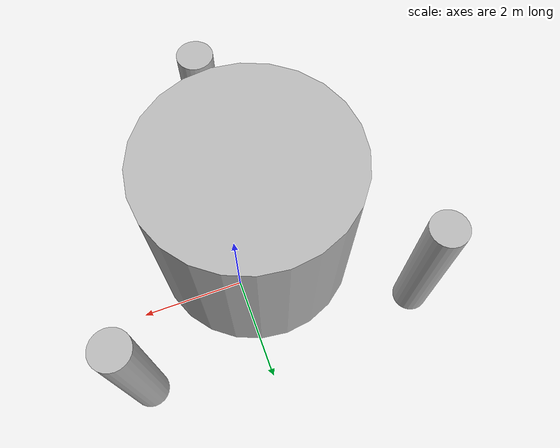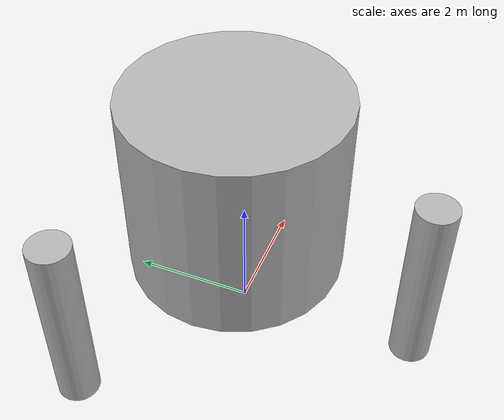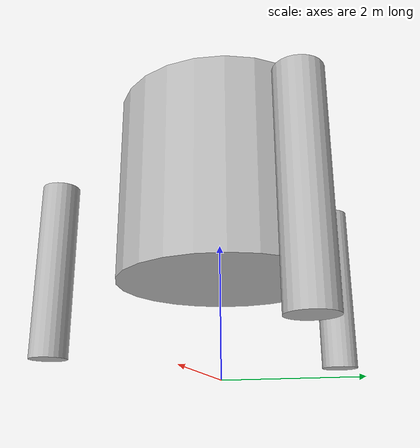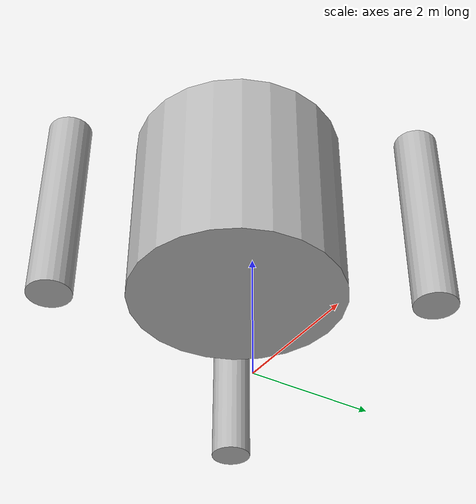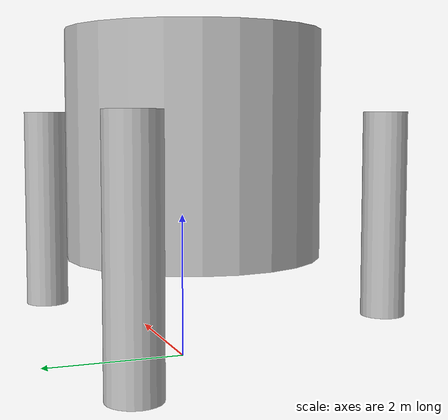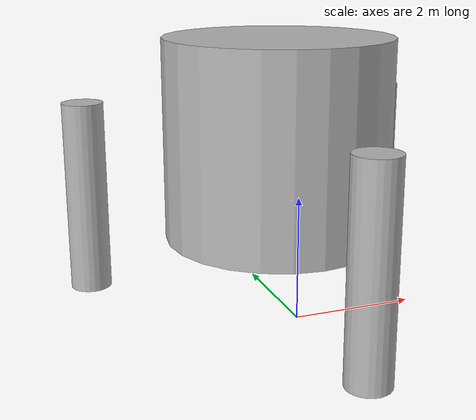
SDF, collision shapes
<?xml version="1.0" ?>
<sdf version="1.6">
  <model name="isru_processing_plant">
    <pose>0 0 0.4 0 0 0</pose>
    <link name="link">
      <collision name='collision_2'>
        <laser_retro>0</laser_retro>
        <max_contacts>10</max_contacts>
        <pose>-3 1.5 1.54 0 -0 0</pose>
        <geometry>
          <cylinder>
            <radius>0.32</radius>
            <length>3</length>
          </cylinder>
        </geometry>
        <surface>
          <friction>
            <ode>
              <mu>1</mu>
              <mu2>1</mu2>
              <fdir1>0 0 0</fdir1>
              <slip1>0</slip1>
              <slip2>0</slip2>
            </ode>
            <torsional>
              <coefficient>1</coefficient>
              <patch_radius>0</patch_radius>
              <surface_radius>0</surface_radius>
              <use_patch_radius>1</use_patch_radius>
              <ode>
                <slip>0</slip>
              </ode>
            </torsional>
          </friction>
          <bounce>
            <restitution_coefficient>0</restitution_coefficient>
            <threshold>1e+06</threshold>
          </bounce>
          <contact>
            <collide_without_contact>0</collide_without_contact>
            <collide_without_contact_bitmask>1</collide_without_contact_bitmask>
            <collide_bitmask>1</collide_bitmask>
            <ode>
              <soft_cfm>0</soft_cfm>
              <soft_erp>0.2</soft_erp>
              <kp>1e+13</kp>
              <kd>1</kd>
              <max_vel>0.01</max_vel>
              <min_depth>0</min_depth>
            </ode>
            <bullet>
              <split_impulse>1</split_impulse>
              <split_impulse_penetration_threshold>-0.01</split_impulse_penetration_threshold>
              <soft_cfm>0</soft_cfm>
              <soft_erp>0.2</soft_erp>
              <kp>1e+13</kp>
              <kd>1</kd>
            </bullet>
          </contact>
        </surface>
      </collision>
      <collision name='collision_3'>
        <laser_retro>0</laser_retro>
        <max_contacts>10</max_contacts>
        <pose>-0.37 -3 1.54 0 -0 0</pose>
        <geometry>
          <cylinder>
            <radius>0.32</radius>
            <length>3</length>
          </cylinder>
        </geometry>
        <surface>
          <friction>
            <ode>
              <mu>1</mu>
              <mu2>1</mu2>
              <fdir1>0 0 0</fdir1>
              <slip1>0</slip1>
              <slip2>0</slip2>
            </ode>
            <torsional>
              <coefficient>1</coefficient>
              <patch_radius>0</patch_radius>
              <surface_radius>0</surface_radius>
              <use_patch_radius>1</use_patch_radius>
              <ode>
                <slip>0</slip>
              </ode>
            </torsional>
          </friction>
          <bounce>
            <restitution_coefficient>0</restitution_coefficient>
            <threshold>1e+06</threshold>
          </bounce>
          <contact>
            <collide_without_contact>0</collide_without_contact>
            <collide_without_contact_bitmask>1</collide_without_contact_bitmask>
            <collide_bitmask>1</collide_bitmask>
            <ode>
              <soft_cfm>0</soft_cfm>
              <soft_erp>0.2</soft_erp>
              <kp>1e+13</kp>
              <kd>1</kd>
              <max_vel>0.01</max_vel>
              <min_depth>0</min_depth>
            </ode>
            <bullet>
              <split_impulse>1</split_impulse>
              <split_impulse_penetration_threshold>-0.01</split_impulse_penetration_threshold>
              <soft_cfm>0</soft_cfm>
              <soft_erp>0.2</soft_erp>
              <kp>1e+13</kp>
              <kd>1</kd>
            </bullet>
          </contact>
        </surface>
      </collision>
      <collision name='collision_1'>
        <laser_retro>0</laser_retro>
        <max_contacts>10</max_contacts>
        <pose>2.19 1.54 1.54 0 -0 0</pose>
        <geometry>
          <cylinder>
            <radius>0.32</radius>
            <length>3</length>
          </cylinder>
        </geometry>
        <surface>
          <friction>
            <ode>
              <mu>1</mu>
              <mu2>1</mu2>
              <fdir1>0 0 0</fdir1>
              <slip1>0</slip1>
              <slip2>0</slip2>
            </ode>
            <torsional>
              <coefficient>1</coefficient>
              <patch_radius>0</patch_radius>
              <surface_radius>0</surface_radius>
              <use_patch_radius>1</use_patch_radius>
              <ode>
                <slip>0</slip>
              </ode>
            </torsional>
          </friction>
          <bounce>
            <restitution_coefficient>0</restitution_coefficient>
            <threshold>1e+06</threshold>
          </bounce>
          <contact>
            <collide_without_contact>0</collide_without_contact>
            <collide_without_contact_bitmask>1</collide_without_contact_bitmask>
            <collide_bitmask>1</collide_bitmask>
            <ode>
              <soft_cfm>0</soft_cfm>
              <soft_erp>0.2</soft_erp>
              <kp>1e+13</kp>
              <kd>1</kd>
              <max_vel>0.01</max_vel>
              <min_depth>0</min_depth>
            </ode>
            <bullet>
              <split_impulse>1</split_impulse>
              <split_impulse_penetration_threshold>-0.01</split_impulse_penetration_threshold>
              <soft_cfm>0</soft_cfm>
              <soft_erp>0.2</soft_erp>
              <kp>1e+13</kp>
              <kd>1</kd>
            </bullet>
          </contact>
        </surface>
      </collision>
      <collision name='collision_top'>
        <laser_retro>0</laser_retro>
        <max_contacts>10</max_contacts>
        <pose>-0.38 -0.03 2.6 0 -0 0</pose>
        <geometry>
          <cylinder>
            <radius>1.7</radius>
            <length>3</length>
          </cylinder>
        </geometry>
        <surface>
          <friction>
            <ode>
              <mu>1</mu>
              <mu2>1</mu2>
              <fdir1>0 0 0</fdir1>
              <slip1>0</slip1>
              <slip2>0</slip2>
            </ode>
            <torsional>
              <coefficient>1</coefficient>
              <patch_radius>0</patch_radius>
              <surface_radius>0</surface_radius>
              <use_patch_radius>1</use_patch_radius>
              <ode>
                <slip>0</slip>
              </ode>
            </torsional>
          </friction>
          <bounce>
            <restitution_coefficient>0</restitution_coefficient>
            <threshold>1e+06</threshold>
          </bounce>
          <contact>
            <collide_without_contact>0</collide_without_contact>
            <collide_without_contact_bitmask>1</collide_without_contact_bitmask>
            <collide_bitmask>1</collide_bitmask>
            <ode>
              <soft_cfm>0</soft_cfm>
              <soft_erp>0.2</soft_erp>
              <kp>1e+13</kp>
              <kd>1</kd>
              <max_vel>0.01</max_vel>
              <min_depth>0</min_depth>
            </ode>
            <bullet>
              <split_impulse>1</split_impulse>
              <split_impulse_penetration_threshold>-0.01</split_impulse_penetration_threshold>
              <soft_cfm>0</soft_cfm>
              <soft_erp>0.2</soft_erp>
              <kp>1e+13</kp>
              <kd>1</kd>
            </bullet>
          </contact>
        </surface>
      </collision>
      <visual name="visual">
        <geometry>
          <mesh>
            <uri>model://isru_processing_plant/meshes/model.dae</uri>
          </mesh>
        </geometry>
        <material>
          <script>
            <uri>model://isru_processing_plant/materials/scripts</uri>
            <uri>model://isru_processing_plant/materials/textures</uri>
            <name>isru_processing_plant</name>
          </script>
        </material>
      </visual>
    </link>
  </model>
</sdf>
